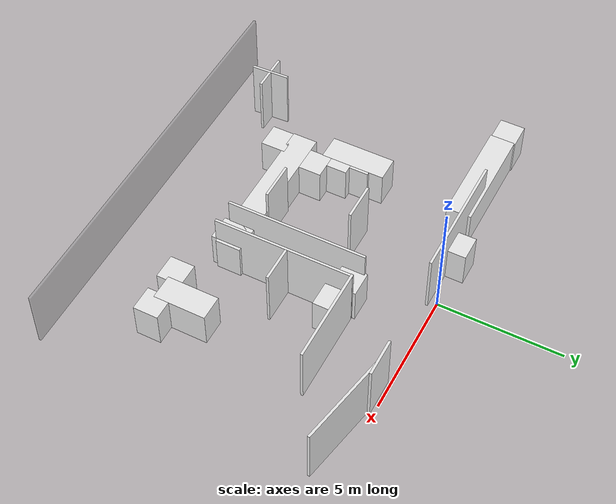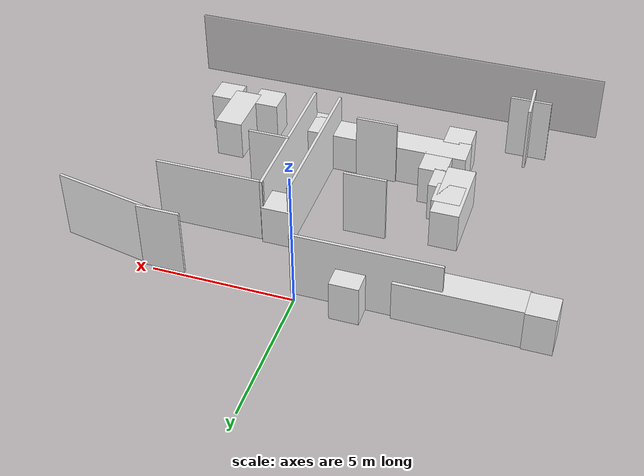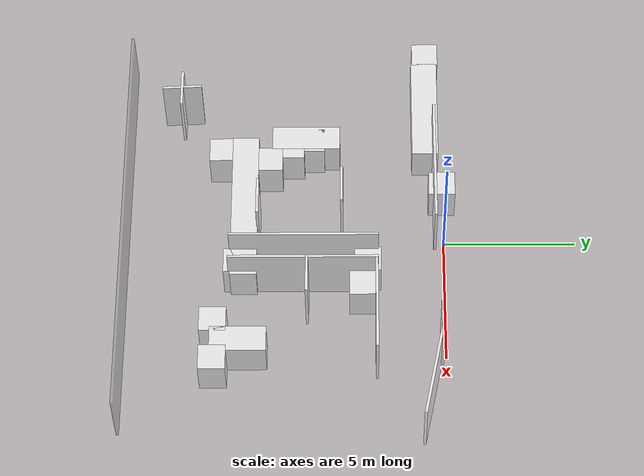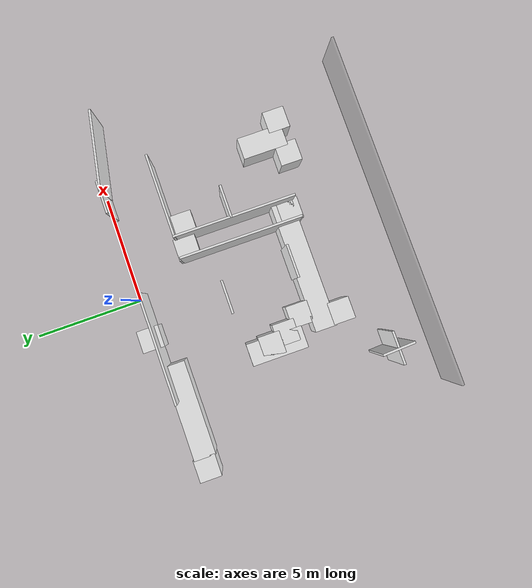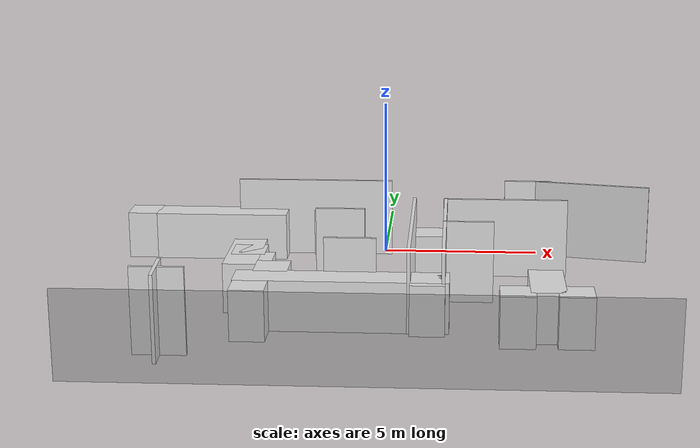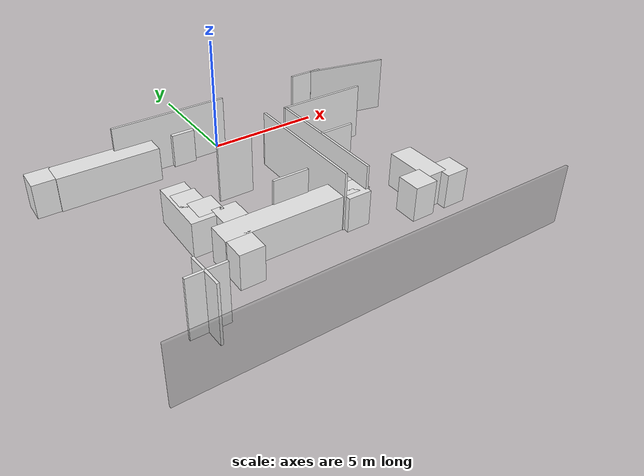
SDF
<sdf version="1.6">
 <world name="default">
  <model name="box_1">
   <pose>0.05 -12.05 1.25 0 -0 0</pose>
   <static>1</static>
   <link name="link">
    <collision name="collision"><geometry><box><size>16.1 0.1 2.5</size></box></geometry></collision>
    <visual name="visual">
     <geometry><box><size>16.1 0.1 2.5</size></box></geometry>
     <material>
      <script><name>Gazebo/GreyTransparent</name><uri>file://media/materials/scripts/gazebo.material</uri></script>
     </material>
    </visual>
   </link>
  </model>
  <model name="box_8_clone">
   <pose>6.73576 -0.524414 1.25 0 0 -0.191358</pose>
   <static>1</static>
   <link name="link">
    <collision name="collision"><geometry><box><size>3.67087 0.1 2.5</size></box></geometry></collision>
    <visual name="visual">
     <geometry><box><size>3.67087 0.1 2.5</size></box></geometry>
     <material>
      <script><name>Gazebo/White</name><uri>file://media/materials/scripts/gazebo.material</uri></script>
     </material>
    </visual>
   </link>
  </model>
  <model name="box_9_clone_clone_0">
   <pose>-3.41271 -8.44795 0.75 0 -0 0</pose>
   <static>1</static>
   <link name="link">
    <collision name="collision"><geometry><box><size>1 1 1.5</size></box></geometry></collision>
    <visual name="visual">
     <geometry><box><size>1 1 1.5</size></box></geometry>
     <material>
      <script><name>Gazebo/White</name><uri>file://media/materials/scripts/gazebo.material</uri></script>
     </material>
    </visual>
   </link>
  </model>
  <model name="box_9_clone_clone_1">
   <pose>-0.879146 -7.56359 0.75 0 -0 0</pose>
   <static>1</static>
   <link name="link">
    <collision name="collision"><geometry><box><size>6.13337 1 1.5</size></box></geometry></collision>
    <visual name="visual">
     <geometry><box><size>6.13337 1 1.5</size></box></geometry>
     <material>
      <script><name>Gazebo/White</name><uri>file://media/materials/scripts/gazebo.material</uri></script>
     </material>
    </visual>
   </link>
  </model>
  <model name="box_9_clone_clone_2">
   <pose>-2.96368 -6.64819 0.75 0 -0 0</pose>
   <static>1</static>
   <link name="link">
    <collision name="collision"><geometry><box><size>1 1 1.5</size></box></geometry></collision>
    <visual name="visual">
     <geometry><box><size>1 1 1.5</size></box></geometry>
     <material>
      <script><name>Gazebo/White</name><uri>file://media/materials/scripts/gazebo.material</uri></script>
     </material>
    </visual>
   </link>
  </model>
  <model name="box_9_clone_clone_3">
   <pose>5.68831 -8.62591 0.75 0 -0 0</pose>
   <static>1</static>
   <link name="link">
    <collision name="collision"><geometry><box><size>1 1 1.5</size></box></geometry></collision>
    <visual name="visual">
     <geometry><box><size>1 1 1.5</size></box></geometry>
     <material>
      <script><name>Gazebo/White</name><uri>file://media/materials/scripts/gazebo.material</uri></script>
     </material>
    </visual>
   </link>
  </model>
  <model name="box_9_clone_clone_4">
   <pose>4.92737 -7.69876 0.75 0 -0 0</pose>
   <static>1</static>
   <link name="link">
    <collision name="collision"><geometry><box><size>1 2.09227 1.5</size></box></geometry></collision>
    <visual name="visual">
     <geometry><box><size>1 2.09227 1.5</size></box></geometry>
     <material>
      <script><name>Gazebo/White</name><uri>file://media/materials/scripts/gazebo.material</uri></script>
     </material>
    </visual>
   </link>
  </model>
  <model name="box_8_clone_clone_13_clone_clone_clone_clone_0">
   <pose>3.88443 -2.57138 1.25 0 -0 0</pose>
   <static>1</static>
   <link name="link">
    <collision name="collision"><geometry><box><size>3.86211 0.1 2.5</size></box></geometry></collision>
    <visual name="visual">
     <geometry><box><size>3.86211 0.1 2.5</size></box></geometry>
     <material>
      <script><name>Gazebo/White</name><uri>file://media/materials/scripts/gazebo.material</uri></script>
     </material>
    </visual>
   </link>
  </model>
  <model name="box_8_clone_clone_11_clone">
   <pose>-1.1954 -3.87817 1.25 0 -0 0</pose>
   <static>1</static>
   <link name="link">
    <collision name="collision"><geometry><box><size>1.5 0.1 2.5</size></box></geometry></collision>
    <visual name="visual">
     <geometry><box><size>1.5 0.1 2.5</size></box></geometry>
     <material>
      <script><name>Gazebo/White</name><uri>file://media/materials/scripts/gazebo.material</uri></script>
     </material>
    </visual>
   </link>
  </model>
  <model name="box_9_clone_clone_7_clone_clone">
   <pose>-7.89766 -0.627489 0.75 0 -0 0</pose>
   <static>1</static>
   <link name="link">
    <collision name="collision"><geometry><box><size>1 1 1.5</size></box></geometry></collision>
    <visual name="visual">
     <geometry><box><size>1 1 1.5</size></box></geometry>
     <material>
      <script><name>Gazebo/White</name><uri>file://media/materials/scripts/gazebo.material</uri></script>
     </material>
    </visual>
   </link>
  </model>
  <model name="box_9_clone_clone_7_clone_clone_3">
   <pose>-3.94528 -5.25172 0.75 0 -0 0</pose>
   <static>1</static>
   <link name="link">
    <collision name="collision"><geometry><box><size>1 2.57973 1.5</size></box></geometry></collision>
    <visual name="visual">
     <geometry><box><size>1 2.57973 1.5</size></box></geometry>
     <material>
      <script><name>Gazebo/White</name><uri>file://media/materials/scripts/gazebo.material</uri></script>
     </material>
    </visual>
   </link>
  </model>
  <model name="box_9_clone_clone_7_clone_clone_4">
   <pose>-3.83027 -5.04481 0.75 0 -0 0</pose>
   <static>1</static>
   <link name="link">
    <collision name="collision"><geometry><box><size>1 1 1.5</size></box></geometry></collision>
    <visual name="visual">
     <geometry><box><size>1 1 1.5</size></box></geometry>
     <material>
      <script><name>Gazebo/White</name><uri>file://media/materials/scripts/gazebo.material</uri></script>
     </material>
    </visual>
   </link>
  </model>
  <model name="box_9_clone_clone_7_clone_clone_5">
   <pose>-3.52537 -5.82067 0.75 0 -0 0</pose>
   <static>1</static>
   <link name="link">
    <collision name="collision"><geometry><box><size>1 1 1.5</size></box></geometry></collision>
    <visual name="visual">
     <geometry><box><size>1 1 1.5</size></box></geometry>
     <material>
      <script><name>Gazebo/White</name><uri>file://media/materials/scripts/gazebo.material</uri></script>
     </material>
    </visual>
   </link>
  </model>
  <model name="box_9_clone_clone_5_clone_2_clone_0_clone_0">
   <pose>4.08001 -8.6431 0.75 0 -0 0</pose>
   <static>1</static>
   <link name="link">
    <collision name="collision"><geometry><box><size>1 1 1.5</size></box></geometry></collision>
    <visual name="visual">
     <geometry><box><size>1 1 1.5</size></box></geometry>
     <material>
      <script><name>Gazebo/White</name><uri>file://media/materials/scripts/gazebo.material</uri></script>
     </material>
    </visual>
   </link>
  </model>
  <model name="box_9_clone_clone_7_clone_clone_clone">
   <pose>-5.32159 -0.673379 0.75 0 -0 0</pose>
   <static>1</static>
   <link name="link">
    <collision name="collision"><geometry><box><size>4.25949 1 1.5</size></box></geometry></collision>
    <visual name="visual">
     <geometry><box><size>4.25949 1 1.5</size></box></geometry>
     <material>
      <script><name>Gazebo/White</name><uri>file://media/materials/scripts/gazebo.material</uri></script>
     </material>
    </visual>
   </link>
  </model>
  <model name="box_6_clone_clone_3_clone_clone_clone_clone_0">
   <pose>2.0182 -5.31678 1.25 0 -0 0</pose>
   <static>1</static>
   <link name="link">
    <collision name="collision"><geometry><box><size>0.1 5.60332 2.5</size></box></geometry></collision>
    <visual name="visual">
     <geometry><box><size>0.1 5.60332 2.5</size></box></geometry>
     <material>
      <script><name>Gazebo/White</name><uri>file://media/materials/scripts/gazebo.material</uri></script>
     </material>
    </visual>
   </link>
  </model>
  <model name="box_6_clone_clone_3_clone_clone_clone_clone_0_clone">
   <pose>1.04356 -5.29976 1.25 0 -0 0</pose>
   <static>1</static>
   <link name="link">
    <collision name="collision"><geometry><box><size>0.1 5.60332 2.5</size></box></geometry></collision>
    <visual name="visual">
     <geometry><box><size>0.1 5.60332 2.5</size></box></geometry>
     <material>
      <script><name>Gazebo/White</name><uri>file://media/materials/scripts/gazebo.material</uri></script>
     </material>
    </visual>
   </link>
  </model>
  <model name="box_9_clone_clone_5_clone_2_clone_0_clone_clone">
   <pose>1.51029 -2.90303 0.75 0 -0 0</pose>
   <static>1</static>
   <link name="link">
    <collision name="collision"><geometry><box><size>1 1 1.5</size></box></geometry></collision>
    <visual name="visual">
     <geometry><box><size>1 1 1.5</size></box></geometry>
     <material>
      <script><name>Gazebo/White</name><uri>file://media/materials/scripts/gazebo.material</uri></script>
     </material>
    </visual>
   </link>
  </model>
  <model name="box_8_clone_clone">
   <pose>4.67136 -0.169302 1.25 0 -0 0</pose>
   <static>1</static>
   <link name="link">
    <collision name="collision"><geometry><box><size>1.5 0.1 2.5</size></box></geometry></collision>
    <visual name="visual">
     <geometry><box><size>1.5 0.1 2.5</size></box></geometry>
     <material>
      <script><name>Gazebo/White</name><uri>file://media/materials/scripts/gazebo.material</uri></script>
     </material>
    </visual>
   </link>
  </model>
  <model name="box_9_clone_clone_7_clone_clone_0">
   <pose>-1.82358 -0.068042 0.75 0 -0 0</pose>
   <static>1</static>
   <link name="link">
    <collision name="collision"><geometry><box><size>1 1 1.5</size></box></geometry></collision>
    <visual name="visual">
     <geometry><box><size>1 1 1.5</size></box></geometry>
     <material>
      <script><name>Gazebo/White</name><uri>file://media/materials/scripts/gazebo.material</uri></script>
     </material>
    </visual>
   </link>
  </model>
  <model name="box_9_clone_clone_5_clone_2_clone_0_clone_0_clone">
   <pose>1.56966 -7.808 0.75 0 -0 0</pose>
   <static>1</static>
   <link name="link">
    <collision name="collision"><geometry><box><size>1 1 1.5</size></box></geometry></collision>
    <visual name="visual">
     <geometry><box><size>1 1 1.5</size></box></geometry>
     <material>
      <script><name>Gazebo/White</name><uri>file://media/materials/scripts/gazebo.material</uri></script>
     </material>
    </visual>
   </link>
  </model>
  <model name="box_8_clone_clone_3_clone_clone_clone">
   <pose>-2.2916 -0.339317 1.25 0 -0 0</pose>
   <static>1</static>
   <link name="link">
    <collision name="collision"><geometry><box><size>5.03031 0.1 2.5</size></box></geometry></collision>
    <visual name="visual">
     <geometry><box><size>5.03031 0.1 2.5</size></box></geometry>
     <material>
      <script><name>Gazebo/White</name><uri>file://media/materials/scripts/gazebo.material</uri></script>
     </material>
    </visual>
   </link>
  </model>
  <model name="box_9_clone_clone_5_clone_2_clone_0_clone_0_clone_0">
   <pose>2.56687 -3.08492 0.75 0 -0 0</pose>
   <static>1</static>
   <link name="link">
    <collision name="collision"><geometry><box><size>1 1 1.5</size></box></geometry></collision>
    <visual name="visual">
     <geometry><box><size>1 1 1.5</size></box></geometry>
     <material>
      <script><name>Gazebo/White</name><uri>file://media/materials/scripts/gazebo.material</uri></script>
     </material>
    </visual>
   </link>
  </model>
  <model name="box_8_clone_clone_11_clone_clone">
   <pose>2.72179 -5.17165 1.25 0 -0 0</pose>
   <static>1</static>
   <link name="link">
    <collision name="collision"><geometry><box><size>1.5 0.1 2.5</size></box></geometry></collision>
    <visual name="visual">
     <geometry><box><size>1.5 0.1 2.5</size></box></geometry>
     <material>
      <script><name>Gazebo/White</name><uri>file://media/materials/scripts/gazebo.material</uri></script>
     </material>
    </visual>
   </link>
  </model>
  <model name="box_8_clone_clone_11_clone_clone_0">
   <pose>-5.67141 -10.0374 1.25 0 -0 1.62008</pose>
   <static>1</static>
   <link name="link">
    <collision name="collision"><geometry><box><size>1.5 0.1 2.5</size></box></geometry></collision>
    <visual name="visual">
     <geometry><box><size>1.5 0.1 2.5</size></box></geometry>
     <material>
      <script><name>Gazebo/White</name><uri>file://media/materials/scripts/gazebo.material</uri></script>
     </material>
    </visual>
   </link>
  </model>
  <model name="box_8_clone_clone_11_clone_clone_1">
   <pose>-5.63429 -10.0383 1.25 0 -0 0</pose>
   <static>1</static>
   <link name="link">
    <collision name="collision"><geometry><box><size>1.5 0.1 2.5</size></box></geometry></collision>
    <visual name="visual">
     <geometry><box><size>1.5 0.1 2.5</size></box></geometry>
     <material>
      <script><name>Gazebo/White</name><uri>file://media/materials/scripts/gazebo.material</uri></script>
     </material>
    </visual>
   </link>
  </model>
  <model name="box_8_clone_clone_11_clone_clone_1_clone">
   <pose>-0.668626 -7.0443 1.25 0 -0 0</pose>
   <static>1</static>
   <link name="link">
    <collision name="collision"><geometry><box><size>1.5 0.1 2.5</size></box></geometry></collision>
    <visual name="visual">
     <geometry><box><size>1.5 0.1 2.5</size></box></geometry>
     <material>
      <script><name>Gazebo/White</name><uri>file://media/materials/scripts/gazebo.material</uri></script>
     </material>
    </visual>
   </link>
  </model>
 </world>
</sdf>
